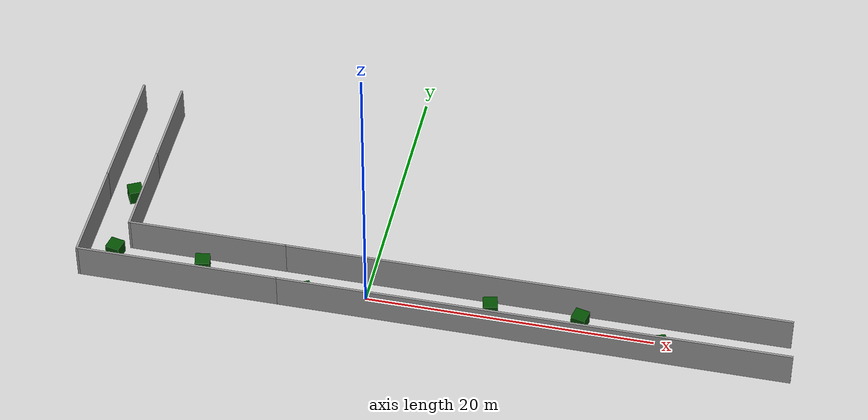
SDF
<sdf version="1.7">
 <world name="default">
  <light name="sun" type="directional">
   <pose>0 0 10 0 -0 0</pose>
   <diffuse>0.8 0.8 0.8 1</diffuse>
   <specular>0.2 0.2 0.2 1</specular>
   <attenuation>
    <range>1000</range>
    <constant>0.9</constant>
    <linear>0.01</linear>
    <quadratic>0.001</quadratic>
   </attenuation>
   <direction>-0.5 0.1 -0.9</direction>
   <spot><inner_angle>0</inner_angle><outer_angle>0</outer_angle><falloff>0</falloff></spot>
  </light>
  <model name="ground_plane">
   <static>1</static>
   <link name="link">
    <collision name="collision">
     <geometry><plane><normal>0 0 1</normal><size>100 100</size></plane></geometry>
     <surface>
      <contact><collide_bitmask>65535</collide_bitmask></contact>
      <friction><ode><mu>100</mu><mu2>50</mu2></ode></friction>
     </surface>
    </collision>
    <visual name="visual">
     <cast_shadows>0</cast_shadows>
     <geometry><plane><normal>0 0 1</normal><size>100 100</size></plane></geometry>
     <material>
      <script><uri>file://media/materials/scripts/gazebo.material</uri><name>Gazebo/Grey</name></script>
     </material>
    </visual>
   </link>
  </model>
  <gravity>0 0 -9.8</gravity>
  <magnetic_field>6e-06 2.3e-05 -4.2e-05</magnetic_field>
  <atmosphere type="adiabatic"/>
  <physics type="ode">
   <max_step_size>0.001</max_step_size>
   <real_time_factor>1</real_time_factor>
   <real_time_update_rate>1000</real_time_update_rate>
  </physics>
  <scene><ambient>0.4 0.4 0.4 1</ambient><background>0.7 0.7 0.7 1</background><shadows>1</shadows></scene>
  <audio><device>default</device></audio>
  <spherical_coordinates>
   <surface_model>EARTH_WGS84</surface_model>
   <latitude_deg>0</latitude_deg>
   <longitude_deg>0</longitude_deg>
   <elevation>0</elevation>
   <heading_deg>0</heading_deg>
  </spherical_coordinates>
  <model name="world2">
   <pose>4.7262 6.81622 0 0 -0 0</pose>
   <link name="Wall_12">
    <collision name="Wall_12_Collision">
     <geometry><box><size>7.75 0.15 2.5</size></box></geometry>
     <pose>0 0 1.25 0 -0 0</pose>
    </collision>
    <visual name="Wall_12_Visual">
     <pose>0 0 1.25 0 -0 0</pose>
     <geometry><box><size>7.75 0.15 2.5</size></box></geometry>
     <material>
      <script><uri>file://media/materials/scripts/gazebo.material</uri><name>Gazebo/Grey</name></script>
      <ambient>1 1 1 1</ambient>
     </material>
     <meta><layer>0</layer></meta>
    </visual>
    <pose>-24.6986 -4.675 0 0 -0 1.5708</pose>
   </link>
   <link name="Wall_14">
    <collision name="Wall_14_Collision">
     <geometry><box><size>11.25 0.15 2.5</size></box></geometry>
     <pose>0 0 1.25 0 -0 0</pose>
    </collision>
    <visual name="Wall_14_Visual">
     <pose>0 0 1.25 0 -0 0</pose>
     <geometry><box><size>11.25 0.15 2.5</size></box></geometry>
     <material>
      <script><uri>file://media/materials/scripts/gazebo.material</uri><name>Gazebo/Grey</name></script>
      <ambient>1 1 1 1</ambient>
     </material>
     <meta><layer>0</layer></meta>
    </visual>
    <pose>-16.3037 -5.29947 0 0 -0 3.14159</pose>
   </link>
   <link name="Wall_16">
    <collision name="Wall_16_Collision">
     <geometry><box><size>7.25 0.15 2.5</size></box></geometry>
     <pose>0 0 1.25 0 -0 0</pose>
    </collision>
    <visual name="Wall_16_Visual">
     <pose>0 0 1.25 0 -0 0</pose>
     <geometry><box><size>7.25 0.15 2.5</size></box></geometry>
     <material>
      <script><uri>file://media/materials/scripts/gazebo.material</uri><name>Gazebo/Grey</name></script>
      <ambient>1 1 1 1</ambient>
     </material>
     <meta><layer>0</layer></meta>
    </visual>
    <pose>-21.8537 -1.74947 0 0 -0 1.5708</pose>
   </link>
   <link name="Wall_18">
    <collision name="Wall_18_Collision">
     <geometry><box><size>9.5 0.15 2.5</size></box></geometry>
     <pose>0 0 1.25 0 -0 0</pose>
    </collision>
    <visual name="Wall_18_Visual">
     <pose>0 0 1.25 0 -0 0</pose>
     <geometry><box><size>9.5 0.15 2.5</size></box></geometry>
     <material>
      <script><uri>file://media/materials/scripts/gazebo.material</uri><name>Gazebo/Grey</name></script>
      <ambient>1 1 1 1</ambient>
     </material>
     <meta><layer>0</layer></meta>
    </visual>
    <pose>-24.6986 3.8 0 0 -0 1.5708</pose>
   </link>
   <link name="Wall_20">
    <collision name="Wall_20_Collision">
     <geometry><box><size>6.75 0.15 2.5</size></box></geometry>
     <pose>0 0 1.25 0 -0 0</pose>
    </collision>
    <visual name="Wall_20_Visual">
     <pose>0 0 1.25 0 -0 0</pose>
     <geometry><box><size>6.75 0.15 2.5</size></box></geometry>
     <material>
      <script><uri>file://media/materials/scripts/gazebo.material</uri><name>Gazebo/Grey</name></script>
      <ambient>1 1 1 1</ambient>
     </material>
     <meta><layer>0</layer></meta>
    </visual>
    <pose>-21.8537 5.10053 0 0 -0 1.5708</pose>
   </link>
   <link name="Wall_24">
    <collision name="Wall_24_Collision">
     <geometry><box><size>35.5 0.15 2.5</size></box></geometry>
     <pose>0 0 1.25 0 -0 0</pose>
    </collision>
    <visual name="Wall_24_Visual">
     <pose>0 0 1.25 0 -0 0</pose>
     <geometry><box><size>35.5 0.15 2.5</size></box></geometry>
     <material>
      <script><uri>file://media/materials/scripts/gazebo.material</uri><name>Gazebo/Grey</name></script>
      <ambient>1 1 1 1</ambient>
     </material>
     <meta><layer>0</layer></meta>
    </visual>
    <pose>7.02355 -8.475 0 0 -0 0</pose>
   </link>
   <link name="Wall_27">
    <collision name="Wall_27_Collision">
     <geometry><box><size>35.25 0.15 2.5</size></box></geometry>
     <pose>0 0 1.25 0 -0 0</pose>
    </collision>
    <visual name="Wall_27_Visual">
     <pose>0 0 1.25 0 -0 0</pose>
     <geometry><box><size>35.25 0.15 2.5</size></box></geometry>
     <material>
      <script><uri>file://media/materials/scripts/gazebo.material</uri><name>Gazebo/Grey</name></script>
      <ambient>1 1 1 1</ambient>
     </material>
     <meta><layer>0</layer></meta>
    </visual>
    <pose>6.79625 -5.29947 0 0 -0 0</pose>
   </link>
   <link name="Wall_9">
    <collision name="Wall_9_Collision">
     <geometry><box><size>14.1971 0.15 2.5</size></box></geometry>
     <pose>0 0 1.25 0 -0 0</pose>
    </collision>
    <visual name="Wall_9_Visual">
     <pose>0 0 1.25 0 -0 0</pose>
     <geometry><box><size>14.1971 0.15 2.5</size></box></geometry>
     <material>
      <script><uri>file://media/materials/scripts/gazebo.material</uri><name>Gazebo/Grey</name></script>
      <ambient>1 1 1 1</ambient>
     </material>
     <meta><layer>0</layer></meta>
    </visual>
    <pose>-17.675 -8.475 0 0 -0 3.14159</pose>
   </link>
   <static>1</static>
  </model>
  <model name="unit_box">
   <link name="link">
    <inertial>
     <mass>1</mass>
     <inertia>
      <ixx>0.166667</ixx>
      <ixy>0</ixy>
      <ixz>0</ixz>
      <iyy>0.166667</iyy>
      <iyz>0</iyz>
      <izz>0.166667</izz>
     </inertia>
    </inertial>
    <visual name="visual">
     <geometry><box><size>1 1 1</size></box></geometry>
     <material>
      <script><name>Gazebo/Grey</name><uri>file://media/materials/scripts/gazebo.material</uri></script>
      <shader type="pixel"><normal_map>__default__</normal_map></shader>
      <ambient>0 0.3 0 0</ambient>
      <diffuse>0.7 0.7 0.7 1</diffuse>
      <specular>0.01 0.01 0.01 1</specular>
      <emissive>0 0 0 1</emissive>
     </material>
    </visual>
    <collision name="collision">
     <geometry><box><size>1 1 1</size></box></geometry>
     <surface>
      <friction>
       <ode><mu>1</mu><mu2>1</mu2><fdir1>0 0 0</fdir1><slip1>0</slip1><slip2>0</slip2></ode>
       <torsional>
        <coefficient>1</coefficient>
        <patch_radius>0</patch_radius>
        <surface_radius>0</surface_radius>
        <use_patch_radius>1</use_patch_radius>
        <ode><slip>0</slip></ode>
       </torsional>
      </friction>
      <bounce><restitution_coefficient>0</restitution_coefficient><threshold>1e+06</threshold></bounce>
      <contact>
       <collide_without_contact>0</collide_without_contact>
       <collide_without_contact_bitmask>1</collide_without_contact_bitmask>
       <collide_bitmask>1</collide_bitmask>
       <ode>
        <soft_cfm>0</soft_cfm>
        <soft_erp>0.2</soft_erp>
        <kp>1e+13</kp>
        <kd>1</kd>
        <max_vel>0.01</max_vel>
        <min_depth>0</min_depth>
       </ode>
       <bullet>
        <split_impulse>1</split_impulse>
        <split_impulse_penetration_threshold>-0.01</split_impulse_penetration_threshold>
        <soft_cfm>0</soft_cfm>
        <soft_erp>0.2</soft_erp>
        <kp>1e+13</kp>
        <kd>1</kd>
       </bullet>
      </contact>
     </surface>
    </collision>
   </link>
   <static>0</static>
   <pose>-18.1905 6.30945 0.499995 1e-05 -0 0.465568</pose>
  </model>
  <model name="unit_box_0">
   <link name="link">
    <inertial>
     <mass>1</mass>
     <inertia>
      <ixx>0.166667</ixx>
      <ixy>0</ixy>
      <ixz>0</ixz>
      <iyy>0.166667</iyy>
      <iyz>0</iyz>
      <izz>0.166667</izz>
     </inertia>
    </inertial>
    <visual name="visual">
     <geometry><box><size>1 1 1</size></box></geometry>
     <material>
      <script><name>Gazebo/Grey</name><uri>file://media/materials/scripts/gazebo.material</uri></script>
      <shader type="pixel"><normal_map>__default__</normal_map></shader>
      <ambient>0 0.3 0 0</ambient>
      <diffuse>0.7 0.7 0.7 1</diffuse>
      <specular>0.01 0.01 0.01 1</specular>
      <emissive>0 0 0 1</emissive>
     </material>
    </visual>
    <collision name="collision">
     <geometry><box><size>1 1 1</size></box></geometry>
     <surface>
      <friction>
       <ode><mu>1</mu><mu2>1</mu2><fdir1>0 0 0</fdir1><slip1>0</slip1><slip2>0</slip2></ode>
       <torsional>
        <coefficient>1</coefficient>
        <patch_radius>0</patch_radius>
        <surface_radius>0</surface_radius>
        <use_patch_radius>1</use_patch_radius>
        <ode><slip>0</slip></ode>
       </torsional>
      </friction>
      <bounce><restitution_coefficient>0</restitution_coefficient><threshold>1e+06</threshold></bounce>
      <contact>
       <collide_without_contact>0</collide_without_contact>
       <collide_without_contact_bitmask>1</collide_without_contact_bitmask>
       <collide_bitmask>1</collide_bitmask>
       <ode>
        <soft_cfm>0</soft_cfm>
        <soft_erp>0.2</soft_erp>
        <kp>1e+13</kp>
        <kd>1</kd>
        <max_vel>0.01</max_vel>
        <min_depth>0</min_depth>
       </ode>
       <bullet>
        <split_impulse>1</split_impulse>
        <split_impulse_penetration_threshold>-0.01</split_impulse_penetration_threshold>
        <soft_cfm>0</soft_cfm>
        <soft_erp>0.2</soft_erp>
        <kp>1e+13</kp>
        <kd>1</kd>
       </bullet>
      </contact>
     </surface>
    </collision>
   </link>
   <static>0</static>
   <pose>-18.0433 0.685839 0.5 0 0 -0.201913</pose>
  </model>
  <model name="unit_box_1">
   <link name="link">
    <inertial>
     <mass>1</mass>
     <inertia>
      <ixx>0.166667</ixx>
      <ixy>0</ixy>
      <ixz>0</ixz>
      <iyy>0.166667</iyy>
      <iyz>0</iyz>
      <izz>0.166667</izz>
     </inertia>
    </inertial>
    <visual name="visual">
     <geometry><box><size>1 1 1</size></box></geometry>
     <material>
      <script><name>Gazebo/Grey</name><uri>file://media/materials/scripts/gazebo.material</uri></script>
      <shader type="pixel"><normal_map>__default__</normal_map></shader>
      <ambient>0 0.3 0 0</ambient>
      <diffuse>0.7 0.7 0.7 1</diffuse>
      <specular>0.01 0.01 0.01 1</specular>
      <emissive>0 0 0 1</emissive>
     </material>
    </visual>
    <collision name="collision">
     <geometry><box><size>1 1 1</size></box></geometry>
     <surface>
      <friction>
       <ode><mu>1</mu><mu2>1</mu2><fdir1>0 0 0</fdir1><slip1>0</slip1><slip2>0</slip2></ode>
       <torsional>
        <coefficient>1</coefficient>
        <patch_radius>0</patch_radius>
        <surface_radius>0</surface_radius>
        <use_patch_radius>1</use_patch_radius>
        <ode><slip>0</slip></ode>
       </torsional>
      </friction>
      <bounce><restitution_coefficient>0</restitution_coefficient><threshold>1e+06</threshold></bounce>
      <contact>
       <collide_without_contact>0</collide_without_contact>
       <collide_without_contact_bitmask>1</collide_without_contact_bitmask>
       <collide_bitmask>1</collide_bitmask>
       <ode>
        <soft_cfm>0</soft_cfm>
        <soft_erp>0.2</soft_erp>
        <kp>1e+13</kp>
        <kd>1</kd>
        <max_vel>0.01</max_vel>
        <min_depth>0</min_depth>
       </ode>
       <bullet>
        <split_impulse>1</split_impulse>
        <split_impulse_penetration_threshold>-0.01</split_impulse_penetration_threshold>
        <soft_cfm>0</soft_cfm>
        <soft_erp>0.2</soft_erp>
        <kp>1e+13</kp>
        <kd>1</kd>
       </bullet>
      </contact>
     </surface>
    </collision>
   </link>
   <static>0</static>
   <pose>-11.7151 0.527395 0.5 0 -0 0.187623</pose>
  </model>
  <model name="unit_box_2">
   <link name="link">
    <inertial>
     <mass>1</mass>
     <inertia>
      <ixx>0.166667</ixx>
      <ixy>0</ixy>
      <ixz>0</ixz>
      <iyy>0.166667</iyy>
      <iyz>0</iyz>
      <izz>0.166667</izz>
     </inertia>
    </inertial>
    <visual name="visual">
     <geometry><box><size>1 1 1</size></box></geometry>
     <material>
      <script><name>Gazebo/Grey</name><uri>file://media/materials/scripts/gazebo.material</uri></script>
      <shader type="pixel"><normal_map>__default__</normal_map></shader>
      <ambient>0 0.3 0 0</ambient>
      <diffuse>0.7 0.7 0.7 1</diffuse>
      <specular>0.01 0.01 0.01 1</specular>
      <emissive>0 0 0 1</emissive>
     </material>
    </visual>
    <collision name="collision">
     <geometry><box><size>1 1 1</size></box></geometry>
     <surface>
      <friction>
       <ode><mu>1</mu><mu2>1</mu2><fdir1>0 0 0</fdir1><slip1>0</slip1><slip2>0</slip2></ode>
       <torsional>
        <coefficient>1</coefficient>
        <patch_radius>0</patch_radius>
        <surface_radius>0</surface_radius>
        <use_patch_radius>1</use_patch_radius>
        <ode><slip>0</slip></ode>
       </torsional>
      </friction>
      <bounce><restitution_coefficient>0</restitution_coefficient><threshold>1e+06</threshold></bounce>
      <contact>
       <collide_without_contact>0</collide_without_contact>
       <collide_without_contact_bitmask>1</collide_without_contact_bitmask>
       <collide_bitmask>1</collide_bitmask>
       <ode>
        <soft_cfm>0</soft_cfm>
        <soft_erp>0.2</soft_erp>
        <kp>1e+13</kp>
        <kd>1</kd>
        <max_vel>0.01</max_vel>
        <min_depth>0</min_depth>
       </ode>
       <bullet>
        <split_impulse>1</split_impulse>
        <split_impulse_penetration_threshold>-0.01</split_impulse_penetration_threshold>
        <soft_cfm>0</soft_cfm>
        <soft_erp>0.2</soft_erp>
        <kp>1e+13</kp>
        <kd>1</kd>
       </bullet>
      </contact>
     </surface>
    </collision>
   </link>
   <static>0</static>
   <pose>-4.20594 -0.674475 0.499997 -5e-06 -0 0.480038</pose>
  </model>
  <model name="unit_box_3">
   <link name="link">
    <inertial>
     <mass>1</mass>
     <inertia>
      <ixx>0.166667</ixx>
      <ixy>0</ixy>
      <ixz>0</ixz>
      <iyy>0.166667</iyy>
      <iyz>0</iyz>
      <izz>0.166667</izz>
     </inertia>
    </inertial>
    <visual name="visual">
     <geometry><box><size>1 1 1</size></box></geometry>
     <material>
      <script><name>Gazebo/Grey</name><uri>file://media/materials/scripts/gazebo.material</uri></script>
      <shader type="pixel"><normal_map>__default__</normal_map></shader>
      <ambient>0 0.3 0 0</ambient>
      <diffuse>0.7 0.7 0.7 1</diffuse>
      <specular>0.01 0.01 0.01 1</specular>
      <emissive>0 0 0 1</emissive>
     </material>
    </visual>
    <collision name="collision">
     <geometry><box><size>1 1 1</size></box></geometry>
     <surface>
      <friction>
       <ode><mu>1</mu><mu2>1</mu2><fdir1>0 0 0</fdir1><slip1>0</slip1><slip2>0</slip2></ode>
       <torsional>
        <coefficient>1</coefficient>
        <patch_radius>0</patch_radius>
        <surface_radius>0</surface_radius>
        <use_patch_radius>1</use_patch_radius>
        <ode><slip>0</slip></ode>
       </torsional>
      </friction>
      <bounce><restitution_coefficient>0</restitution_coefficient><threshold>1e+06</threshold></bounce>
      <contact>
       <collide_without_contact>0</collide_without_contact>
       <collide_without_contact_bitmask>1</collide_without_contact_bitmask>
       <collide_bitmask>1</collide_bitmask>
       <ode>
        <soft_cfm>0</soft_cfm>
        <soft_erp>0.2</soft_erp>
        <kp>1e+13</kp>
        <kd>1</kd>
        <max_vel>0.01</max_vel>
        <min_depth>0</min_depth>
       </ode>
       <bullet>
        <split_impulse>1</split_impulse>
        <split_impulse_penetration_threshold>-0.01</split_impulse_penetration_threshold>
        <soft_cfm>0</soft_cfm>
        <soft_erp>0.2</soft_erp>
        <kp>1e+13</kp>
        <kd>1</kd>
       </bullet>
      </contact>
     </surface>
    </collision>
   </link>
   <static>0</static>
   <pose>2.49937 -0.836314 0.5 0 0 -0.187178</pose>
  </model>
  <model name="unit_box_4">
   <link name="link">
    <inertial>
     <mass>1</mass>
     <inertia>
      <ixx>0.166667</ixx>
      <ixy>0</ixy>
      <ixz>0</ixz>
      <iyy>0.166667</iyy>
      <iyz>0</iyz>
      <izz>0.166667</izz>
     </inertia>
    </inertial>
    <visual name="visual">
     <geometry><box><size>1 1 1</size></box></geometry>
     <material>
      <script><name>Gazebo/Grey</name><uri>file://media/materials/scripts/gazebo.material</uri></script>
      <shader type="pixel"><normal_map>__default__</normal_map></shader>
      <ambient>0 0.3 0 0</ambient>
      <diffuse>0.7 0.7 0.7 1</diffuse>
      <specular>0.01 0.01 0.01 1</specular>
      <emissive>0 0 0 1</emissive>
     </material>
    </visual>
    <collision name="collision">
     <geometry><box><size>1 1 1</size></box></geometry>
     <surface>
      <friction>
       <ode><mu>1</mu><mu2>1</mu2><fdir1>0 0 0</fdir1><slip1>0</slip1><slip2>0</slip2></ode>
       <torsional>
        <coefficient>1</coefficient>
        <patch_radius>0</patch_radius>
        <surface_radius>0</surface_radius>
        <use_patch_radius>1</use_patch_radius>
        <ode><slip>0</slip></ode>
       </torsional>
      </friction>
      <bounce><restitution_coefficient>0</restitution_coefficient><threshold>1e+06</threshold></bounce>
      <contact>
       <collide_without_contact>0</collide_without_contact>
       <collide_without_contact_bitmask>1</collide_without_contact_bitmask>
       <collide_bitmask>1</collide_bitmask>
       <ode>
        <soft_cfm>0</soft_cfm>
        <soft_erp>0.2</soft_erp>
        <kp>1e+13</kp>
        <kd>1</kd>
        <max_vel>0.01</max_vel>
        <min_depth>0</min_depth>
       </ode>
       <bullet>
        <split_impulse>1</split_impulse>
        <split_impulse_penetration_threshold>-0.01</split_impulse_penetration_threshold>
        <soft_cfm>0</soft_cfm>
        <soft_erp>0.2</soft_erp>
        <kp>1e+13</kp>
        <kd>1</kd>
       </bullet>
      </contact>
     </surface>
    </collision>
   </link>
   <static>0</static>
   <pose>8.58956 0.541259 0.5 0 -0 0.236596</pose>
  </model>
  <model name="unit_box_5">
   <link name="link">
    <inertial>
     <mass>1</mass>
     <inertia>
      <ixx>0.166667</ixx>
      <ixy>0</ixy>
      <ixz>0</ixz>
      <iyy>0.166667</iyy>
      <iyz>0</iyz>
      <izz>0.166667</izz>
     </inertia>
    </inertial>
    <visual name="visual">
     <geometry><box><size>1 1 1</size></box></geometry>
     <material>
      <script><name>Gazebo/Grey</name><uri>file://media/materials/scripts/gazebo.material</uri></script>
      <shader type="pixel"><normal_map>__default__</normal_map></shader>
      <ambient>0 0.3 0 0</ambient>
      <diffuse>0.7 0.7 0.7 1</diffuse>
      <specular>0.01 0.01 0.01 1</specular>
      <emissive>0 0 0 1</emissive>
     </material>
    </visual>
    <collision name="collision">
     <geometry><box><size>1 1 1</size></box></geometry>
     <surface>
      <friction>
       <ode><mu>1</mu><mu2>1</mu2><fdir1>0 0 0</fdir1><slip1>0</slip1><slip2>0</slip2></ode>
       <torsional>
        <coefficient>1</coefficient>
        <patch_radius>0</patch_radius>
        <surface_radius>0</surface_radius>
        <use_patch_radius>1</use_patch_radius>
        <ode><slip>0</slip></ode>
       </torsional>
      </friction>
      <bounce><restitution_coefficient>0</restitution_coefficient><threshold>1e+06</threshold></bounce>
      <contact>
       <collide_without_contact>0</collide_without_contact>
       <collide_without_contact_bitmask>1</collide_without_contact_bitmask>
       <collide_bitmask>1</collide_bitmask>
       <ode>
        <soft_cfm>0</soft_cfm>
        <soft_erp>0.2</soft_erp>
        <kp>1e+13</kp>
        <kd>1</kd>
        <max_vel>0.01</max_vel>
        <min_depth>0</min_depth>
       </ode>
       <bullet>
        <split_impulse>1</split_impulse>
        <split_impulse_penetration_threshold>-0.01</split_impulse_penetration_threshold>
        <soft_cfm>0</soft_cfm>
        <soft_erp>0.2</soft_erp>
        <kp>1e+13</kp>
        <kd>1</kd>
       </bullet>
      </contact>
     </surface>
    </collision>
   </link>
   <static>0</static>
   <pose>14.7952 0.668842 0.5 0 0 -0.224155</pose>
  </model>
  <model name="unit_box_6">
   <link name="link">
    <inertial>
     <mass>1</mass>
     <inertia>
      <ixx>0.166667</ixx>
      <ixy>0</ixy>
      <ixz>0</ixz>
      <iyy>0.166667</iyy>
      <iyz>0</iyz>
      <izz>0.166667</izz>
     </inertia>
    </inertial>
    <visual name="visual">
     <geometry><box><size>1 1 1</size></box></geometry>
     <material>
      <script><name>Gazebo/Grey</name><uri>file://media/materials/scripts/gazebo.material</uri></script>
      <shader type="pixel"><normal_map>__default__</normal_map></shader>
      <ambient>0 0.3 0 0</ambient>
      <diffuse>0.7 0.7 0.7 1</diffuse>
      <specular>0.01 0.01 0.01 1</specular>
      <emissive>0 0 0 1</emissive>
     </material>
    </visual>
    <collision name="collision">
     <geometry><box><size>1 1 1</size></box></geometry>
     <surface>
      <friction>
       <ode><mu>1</mu><mu2>1</mu2><fdir1>0 0 0</fdir1><slip1>0</slip1><slip2>0</slip2></ode>
       <torsional>
        <coefficient>1</coefficient>
        <patch_radius>0</patch_radius>
        <surface_radius>0</surface_radius>
        <use_patch_radius>1</use_patch_radius>
        <ode><slip>0</slip></ode>
       </torsional>
      </friction>
      <bounce><restitution_coefficient>0</restitution_coefficient><threshold>1e+06</threshold></bounce>
      <contact>
       <collide_without_contact>0</collide_without_contact>
       <collide_without_contact_bitmask>1</collide_without_contact_bitmask>
       <collide_bitmask>1</collide_bitmask>
       <ode>
        <soft_cfm>0</soft_cfm>
        <soft_erp>0.2</soft_erp>
        <kp>1e+13</kp>
        <kd>1</kd>
        <max_vel>0.01</max_vel>
        <min_depth>0</min_depth>
       </ode>
       <bullet>
        <split_impulse>1</split_impulse>
        <split_impulse_penetration_threshold>-0.01</split_impulse_penetration_threshold>
        <soft_cfm>0</soft_cfm>
        <soft_erp>0.2</soft_erp>
        <kp>1e+13</kp>
        <kd>1</kd>
       </bullet>
      </contact>
     </surface>
    </collision>
   </link>
   <static>0</static>
   <pose>20.4313 -0.594752 0.5 0 -0 0.323443</pose>
  </model>
 </world>
</sdf>
